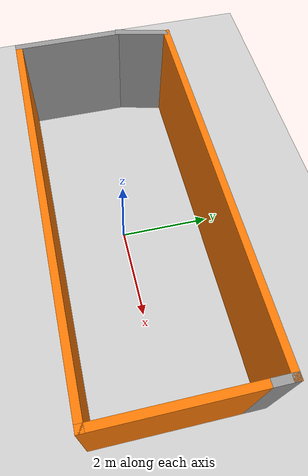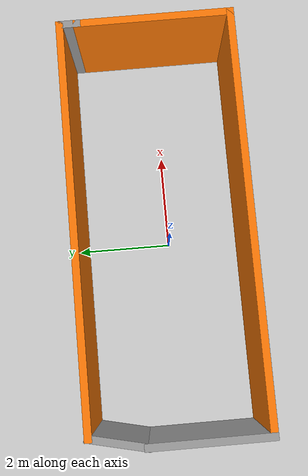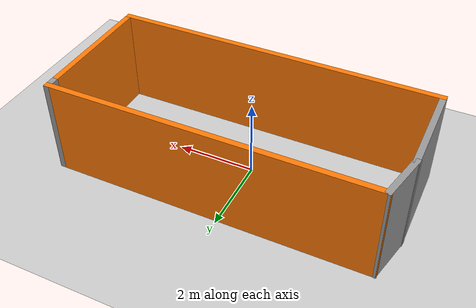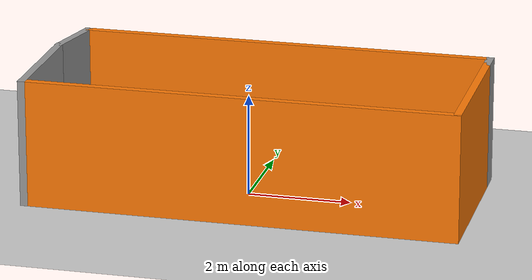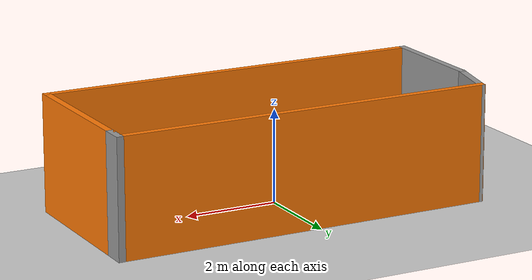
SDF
<sdf version="1.7">
 <world name="default">
  <light name="sun" type="directional">
   <pose>0 0 10 0 -0 0</pose>
   <diffuse>0.8 0.8 0.8 1</diffuse>
   <specular>0.2 0.2 0.2 1</specular>
   <attenuation>
    <range>1000</range>
    <constant>0.9</constant>
    <linear>0.01</linear>
    <quadratic>0.001</quadratic>
   </attenuation>
   <direction>-0.5 0.1 -0.9</direction>
   <spot><inner_angle>0</inner_angle><outer_angle>0</outer_angle><falloff>0</falloff></spot>
  </light>
  <model name="ground_plane">
   <static>1</static>
   <link name="link">
    <collision name="collision">
     <geometry><plane><normal>0 0 1</normal><size>100 100</size></plane></geometry>
     <surface>
      <contact><collide_bitmask>65535</collide_bitmask></contact>
      <friction><ode><mu>100</mu><mu2>50</mu2></ode></friction>
     </surface>
    </collision>
    <visual name="visual">
     <cast_shadows>0</cast_shadows>
     <geometry><plane><normal>0 0 1</normal><size>100 100</size></plane></geometry>
     <material>
      <script><uri>file://media/materials/scripts/gazebo.material</uri><name>Gazebo/Grey</name></script>
     </material>
    </visual>
   </link>
  </model>
  <gravity>0 0 -9.8</gravity>
  <magnetic_field>6e-06 2.3e-05 -4.2e-05</magnetic_field>
  <atmosphere type="adiabatic"/>
  <physics type="ode">
   <max_step_size>0.001</max_step_size>
   <real_time_factor>1</real_time_factor>
   <real_time_update_rate>1000</real_time_update_rate>
  </physics>
  <scene><ambient>0.4 0.4 0.4 1</ambient><background>0.7 0.7 0.7 1</background><shadows>1</shadows></scene>
  <audio><device>default</device></audio>
  <spherical_coordinates>
   <surface_model>EARTH_WGS84</surface_model>
   <latitude_deg>0</latitude_deg>
   <longitude_deg>0</longitude_deg>
   <elevation>0</elevation>
   <heading_deg>0</heading_deg>
  </spherical_coordinates>
  <model name="Untitled">
   <pose>0.147622 0.342826 0 0 -0 0</pose>
   <link name="Wall_0">
    <collision name="Wall_0_Collision">
     <geometry><box><size>2.5 0.15 2.5</size></box></geometry>
     <pose>0 0 1.25 0 -0 0</pose>
    </collision>
    <visual name="Wall_0_Visual">
     <pose>0 0 1.25 0 -0 0</pose>
     <geometry><box><size>2.5 0.15 2.5</size></box></geometry>
     <material>
      <script><uri>file://media/materials/scripts/gazebo.material</uri><name>Gazebo/Grey</name></script>
      <ambient>1 1 1 1</ambient>
     </material>
     <meta><layer>0</layer></meta>
    </visual>
    <pose>-4.16762 -0.7575 0 0 -0 -1.5708</pose>
   </link>
   <link name="Wall_1">
    <collision name="Wall_1_Collision">
     <geometry><box><size>8.5 0.15 2.5</size></box></geometry>
     <pose>0 0 1.25 0 -0 0</pose>
    </collision>
    <visual name="Wall_1_Visual">
     <pose>0 0 1.25 0 -0 0</pose>
     <geometry><box><size>8.5 0.15 2.5</size></box></geometry>
     <material>
      <script><uri>file://media/materials/scripts/gazebo.material</uri><name>Gazebo/Grey</name></script>
      <ambient>0.996078 0.47451 0.0196078 1</ambient>
     </material>
     <meta><layer>0</layer></meta>
    </visual>
    <pose>0.007378 -1.9325 0 0 -0 0</pose>
   </link>
   <link name="Wall_2">
    <collision name="Wall_2_Collision">
     <geometry><box><size>3.25 0.15 2.5</size></box></geometry>
     <pose>0 0 1.25 0 -0 0</pose>
    </collision>
    <visual name="Wall_2_Visual">
     <pose>0 0 1.25 0 -0 0</pose>
     <geometry><box><size>3.25 0.15 2.5</size></box></geometry>
     <material>
      <script><uri>file://media/materials/scripts/gazebo.material</uri><name>Gazebo/Grey</name></script>
      <ambient>0.996078 0.47451 0.0196078 1</ambient>
     </material>
     <meta><layer>0</layer></meta>
    </visual>
    <pose>4.18238 -0.3825 0 0 -0 1.5708</pose>
   </link>
   <link name="Wall_3">
    <collision name="Wall_3_Collision">
     <geometry><box><size>0.5 0.15 2.5</size></box></geometry>
     <pose>0 0 1.25 0 -0 0</pose>
    </collision>
    <visual name="Wall_3_Visual">
     <pose>0 0 1.25 0 -0 0</pose>
     <geometry><box><size>0.5 0.15 2.5</size></box></geometry>
     <material>
      <script><uri>file://media/materials/scripts/gazebo.material</uri><name>Gazebo/Grey</name></script>
      <ambient>1 1 1 1</ambient>
     </material>
     <meta><layer>0</layer></meta>
    </visual>
    <pose>4.18238 1.3425 0 0 -0 1.5708</pose>
   </link>
   <link name="Wall_4">
    <collision name="Wall_4_Collision">
     <geometry><box><size>8.25 0.15 2.5</size></box></geometry>
     <pose>0 0 1.25 0 -0 0</pose>
    </collision>
    <visual name="Wall_4_Visual">
     <pose>0 0 1.25 0 -0 0</pose>
     <geometry><box><size>8.25 0.15 2.5</size></box></geometry>
     <material>
      <script><uri>file://media/materials/scripts/gazebo.material</uri><name>Gazebo/Grey</name></script>
      <ambient>0.996078 0.47451 0.0196078 1</ambient>
     </material>
     <meta><layer>0</layer></meta>
    </visual>
    <pose>0.132378 1.5175 0 0 -0 3.14159</pose>
   </link>
   <link name="Wall_5">
    <collision name="Wall_5_Collision">
     <geometry><box><size>1.27805 0.15 2.5</size></box></geometry>
     <pose>0 0 1.25 0 -0 0</pose>
    </collision>
    <visual name="Wall_5_Visual">
     <pose>0 0 1.25 0 -0 0</pose>
     <geometry><box><size>1.27805 0.15 2.5</size></box></geometry>
     <material>
      <script><uri>file://media/materials/scripts/gazebo.material</uri><name>Gazebo/Grey</name></script>
      <ambient>1 1 1 1</ambient>
     </material>
     <meta><layer>0</layer></meta>
    </visual>
    <pose>-4.04262 0.9675 0 0 -0 -1.79427</pose>
   </link>
   <static>1</static>
  </model>
 </world>
</sdf>
